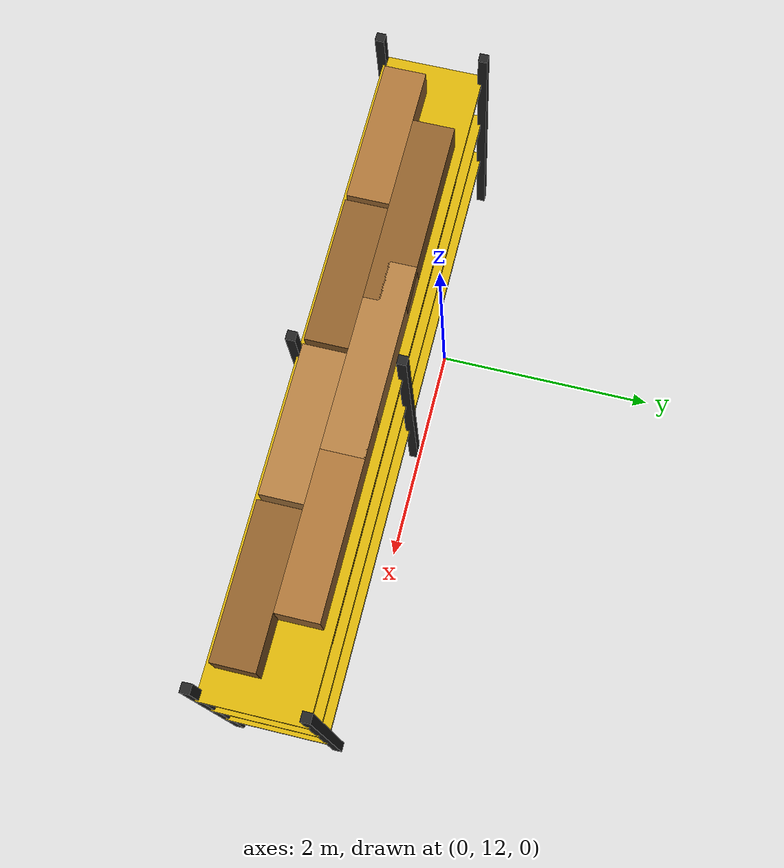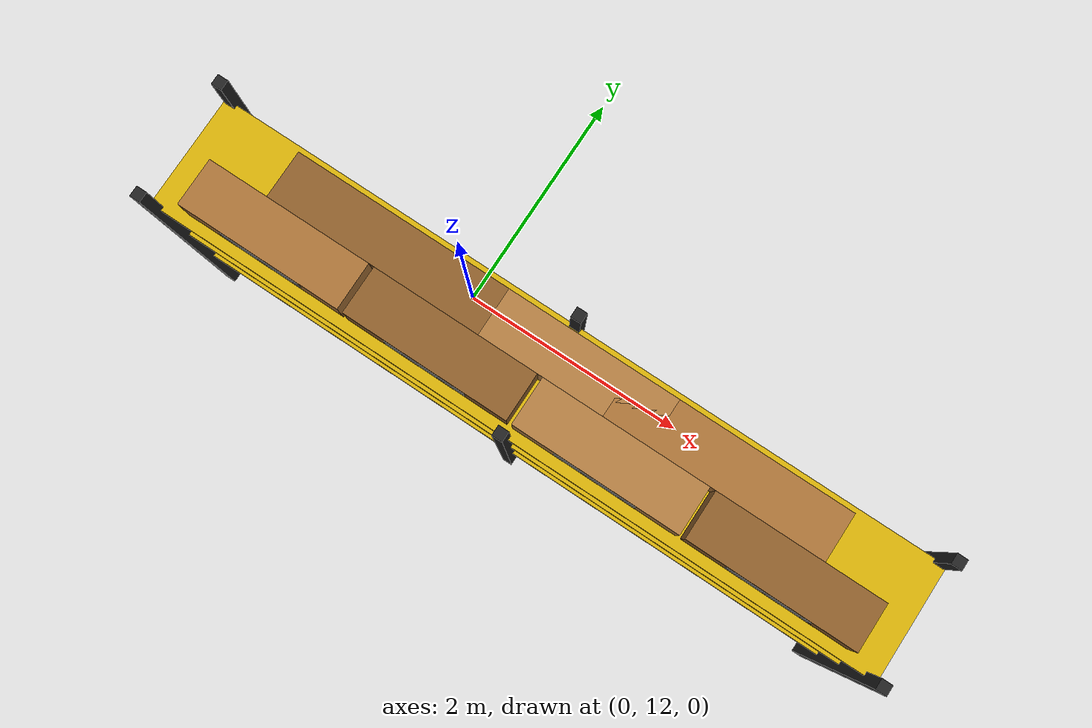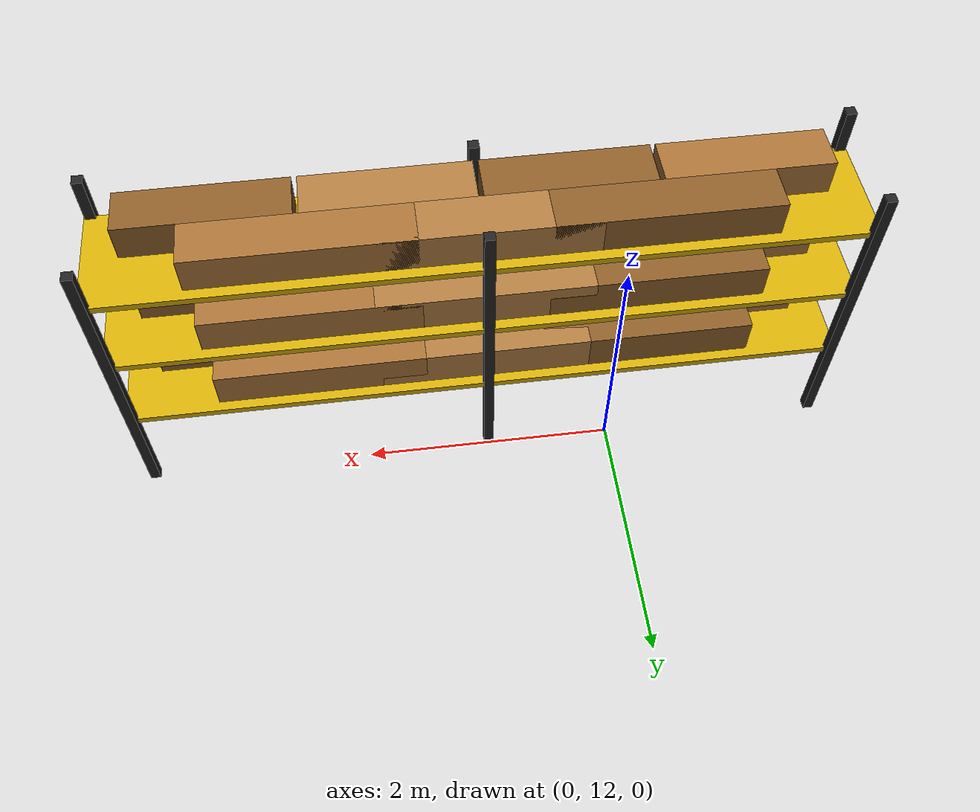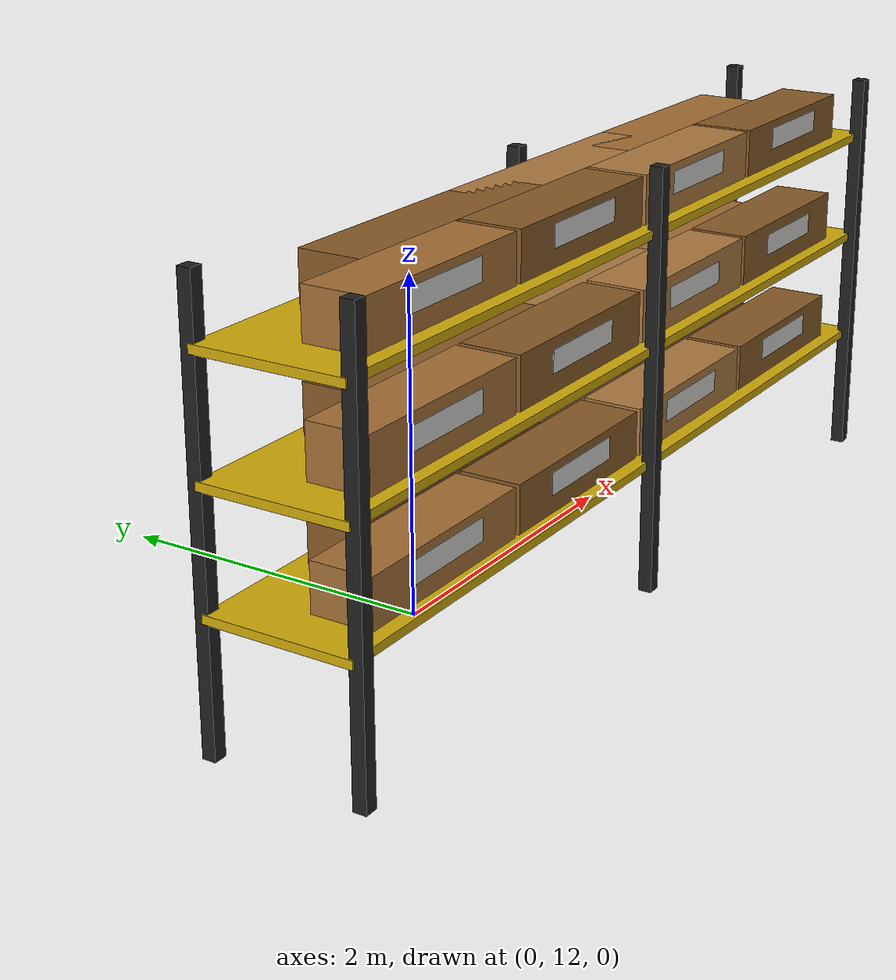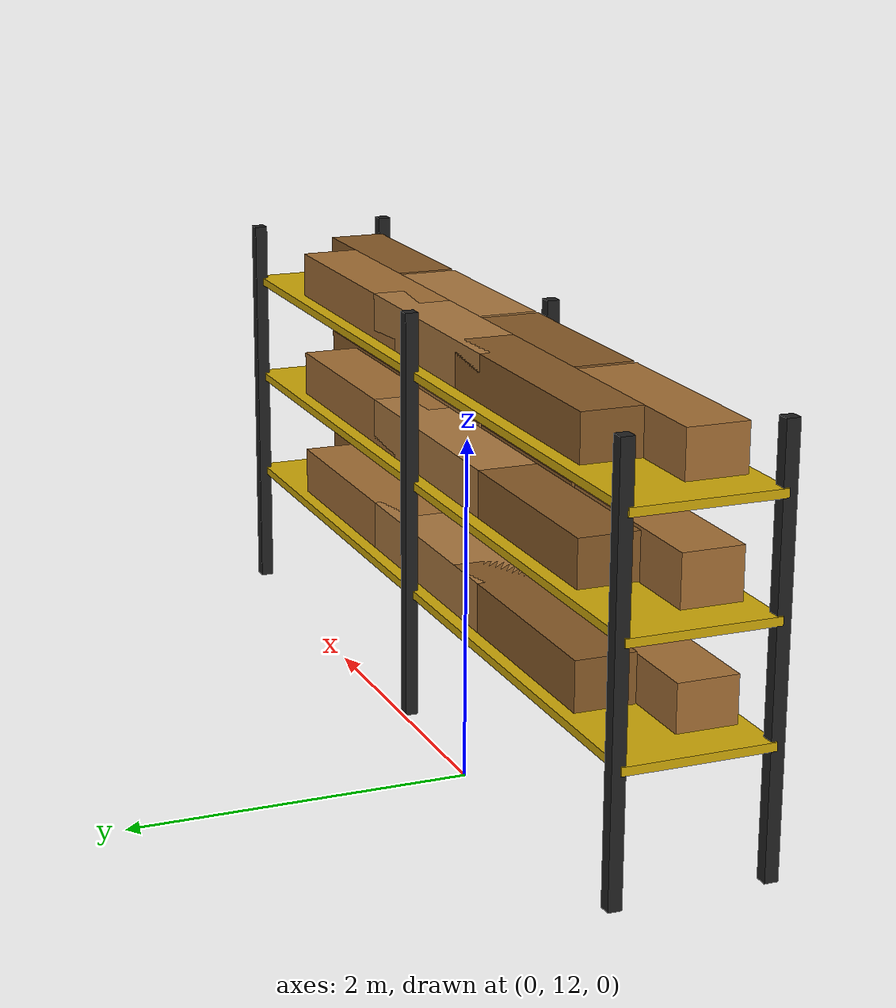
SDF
<sdf version="1.6">
 <world name="aws_industrial_warehouse">
  <model name="shelf_N4">
   <static>true</static>
   <pose>1 11.5 0 0 0 0</pose>
   <link name="pFL">
    <pose>-2.8 -0.45 1.25 0 0 0</pose>
    <collision name="c">
     <geometry><box><size>0.08 0.08 2.5</size></box></geometry>
     <surface><friction><ode><mu>1.0</mu><mu2>1.0</mu2></ode></friction></surface>
    </collision>
    <visual name="v">
     <geometry><box><size>0.08 0.08 2.5</size></box></geometry>
     <material><ambient>0.10 0.10 0.10 1</ambient><diffuse>0.13 0.13 0.13 1</diffuse></material>
    </visual>
   </link>
   <link name="pBL">
    <pose>-2.8 0.45 1.25 0 0 0</pose>
    <collision name="c">
     <geometry><box><size>0.08 0.08 2.5</size></box></geometry>
     <surface><friction><ode><mu>1.0</mu><mu2>1.0</mu2></ode></friction></surface>
    </collision>
    <visual name="v">
     <geometry><box><size>0.08 0.08 2.5</size></box></geometry>
     <material><ambient>0.10 0.10 0.10 1</ambient><diffuse>0.13 0.13 0.13 1</diffuse></material>
    </visual>
   </link>
   <link name="pFC">
    <pose>0.0 -0.45 1.25 0 0 0</pose>
    <collision name="c">
     <geometry><box><size>0.08 0.08 2.5</size></box></geometry>
     <surface><friction><ode><mu>1.0</mu><mu2>1.0</mu2></ode></friction></surface>
    </collision>
    <visual name="v">
     <geometry><box><size>0.08 0.08 2.5</size></box></geometry>
     <material><ambient>0.10 0.10 0.10 1</ambient><diffuse>0.13 0.13 0.13 1</diffuse></material>
    </visual>
   </link>
   <link name="pBC">
    <pose>0.0 0.45 1.25 0 0 0</pose>
    <collision name="c">
     <geometry><box><size>0.08 0.08 2.5</size></box></geometry>
     <surface><friction><ode><mu>1.0</mu><mu2>1.0</mu2></ode></friction></surface>
    </collision>
    <visual name="v">
     <geometry><box><size>0.08 0.08 2.5</size></box></geometry>
     <material><ambient>0.10 0.10 0.10 1</ambient><diffuse>0.13 0.13 0.13 1</diffuse></material>
    </visual>
   </link>
   <link name="pFR">
    <pose>2.8 -0.45 1.25 0 0 0</pose>
    <collision name="c">
     <geometry><box><size>0.08 0.08 2.5</size></box></geometry>
     <surface><friction><ode><mu>1.0</mu><mu2>1.0</mu2></ode></friction></surface>
    </collision>
    <visual name="v">
     <geometry><box><size>0.08 0.08 2.5</size></box></geometry>
     <material><ambient>0.10 0.10 0.10 1</ambient><diffuse>0.13 0.13 0.13 1</diffuse></material>
    </visual>
   </link>
   <link name="pBR">
    <pose>2.8 0.45 1.25 0 0 0</pose>
    <collision name="c">
     <geometry><box><size>0.08 0.08 2.5</size></box></geometry>
     <surface><friction><ode><mu>1.0</mu><mu2>1.0</mu2></ode></friction></surface>
    </collision>
    <visual name="v">
     <geometry><box><size>0.08 0.08 2.5</size></box></geometry>
     <material><ambient>0.10 0.10 0.10 1</ambient><diffuse>0.13 0.13 0.13 1</diffuse></material>
    </visual>
   </link>
   <link name="deck1">
    <pose>0 0 0.77 0 0 0</pose>
    <collision name="c">
     <geometry><box><size>5.7 0.88 0.05</size></box></geometry>
     <surface><friction><ode><mu>1.0</mu><mu2>1.0</mu2></ode></friction></surface>
    </collision>
    <visual name="v">
     <geometry><box><size>5.7 0.88 0.05</size></box></geometry>
     <material><ambient>0.70 0.55 0.02 1</ambient><diffuse>0.82 0.67 0.03 1</diffuse></material>
    </visual>
   </link>
   <link name="deck2">
    <pose>0 0 1.45 0 0 0</pose>
    <collision name="c">
     <geometry><box><size>5.7 0.88 0.05</size></box></geometry>
     <surface><friction><ode><mu>1.0</mu><mu2>1.0</mu2></ode></friction></surface>
    </collision>
    <visual name="v">
     <geometry><box><size>5.7 0.88 0.05</size></box></geometry>
     <material><ambient>0.70 0.55 0.02 1</ambient><diffuse>0.82 0.67 0.03 1</diffuse></material>
    </visual>
   </link>
   <link name="deck3">
    <pose>0 0 2.12 0 0 0</pose>
    <collision name="c">
     <geometry><box><size>5.7 0.88 0.05</size></box></geometry>
     <surface><friction><ode><mu>1.0</mu><mu2>1.0</mu2></ode></friction></surface>
    </collision>
    <visual name="v">
     <geometry><box><size>5.7 0.88 0.05</size></box></geometry>
     <material><ambient>0.70 0.55 0.02 1</ambient><diffuse>0.82 0.67 0.03 1</diffuse></material>
    </visual>
   </link>
   <link name="bF1_1">
    <pose>-1.95 -0.18 0.94 0 0 0</pose>
    <visual name="v">
     <geometry><box><size>1.26 0.36 0.28</size></box></geometry>
     <material><ambient>0.58 0.38 0.18 1</ambient><diffuse>0.65 0.44 0.21 1</diffuse></material>
    </visual>
   </link>
   <link name="lF1_1">
    <pose>-1.95 -0.363 0.97 0 0 0</pose>
    <visual name="v">
     <geometry><box><size>0.62 0.005 0.13</size></box></geometry>
     <material><ambient>0.76 0.76 0.74 1</ambient><diffuse>0.83 0.83 0.81 1</diffuse></material>
    </visual>
   </link>
   <link name="bF1_2">
    <pose>-0.65 -0.18 0.94 0 0 0</pose>
    <visual name="v">
     <geometry><box><size>1.26 0.36 0.28</size></box></geometry>
     <material><ambient>0.48 0.30 0.12 1</ambient><diffuse>0.54 0.36 0.16 1</diffuse></material>
    </visual>
   </link>
   <link name="lF1_2">
    <pose>-0.65 -0.363 0.97 0 0 0</pose>
    <visual name="v">
     <geometry><box><size>0.62 0.005 0.13</size></box></geometry>
     <material><ambient>0.76 0.76 0.74 1</ambient><diffuse>0.83 0.83 0.81 1</diffuse></material>
    </visual>
   </link>
   <link name="bF1_3">
    <pose>0.65 -0.18 0.94 0 0 0</pose>
    <visual name="v">
     <geometry><box><size>1.26 0.36 0.28</size></box></geometry>
     <material><ambient>0.62 0.43 0.22 1</ambient><diffuse>0.68 0.48 0.25 1</diffuse></material>
    </visual>
   </link>
   <link name="lF1_3">
    <pose>0.65 -0.363 0.97 0 0 0</pose>
    <visual name="v">
     <geometry><box><size>0.62 0.005 0.13</size></box></geometry>
     <material><ambient>0.76 0.76 0.74 1</ambient><diffuse>0.83 0.83 0.81 1</diffuse></material>
    </visual>
   </link>
   <link name="bF1_4">
    <pose>1.95 -0.18 0.94 0 0 0</pose>
    <visual name="v">
     <geometry><box><size>1.26 0.36 0.28</size></box></geometry>
     <material><ambient>0.48 0.30 0.12 1</ambient><diffuse>0.54 0.36 0.16 1</diffuse></material>
    </visual>
   </link>
   <link name="lF1_4">
    <pose>1.95 -0.363 0.97 0 0 0</pose>
    <visual name="v">
     <geometry><box><size>0.62 0.005 0.13</size></box></geometry>
     <material><ambient>0.76 0.76 0.74 1</ambient><diffuse>0.83 0.83 0.81 1</diffuse></material>
    </visual>
   </link>
   <link name="bB1_1">
    <pose>-1.3 0.18 0.94 0 0 0</pose>
    <visual name="v">
     <geometry><box><size>1.65 0.36 0.3</size></box></geometry>
     <material><ambient>0.48 0.30 0.12 1</ambient><diffuse>0.54 0.36 0.16 1</diffuse></material>
    </visual>
   </link>
   <link name="bB1_2">
    <pose>0.0 0.18 0.94 0 0 0</pose>
    <visual name="v">
     <geometry><box><size>1.65 0.36 0.3</size></box></geometry>
     <material><ambient>0.62 0.43 0.22 1</ambient><diffuse>0.68 0.48 0.25 1</diffuse></material>
    </visual>
   </link>
   <link name="bB1_3">
    <pose>1.3 0.18 0.94 0 0 0</pose>
    <visual name="v">
     <geometry><box><size>1.65 0.36 0.3</size></box></geometry>
     <material><ambient>0.58 0.38 0.18 1</ambient><diffuse>0.65 0.44 0.21 1</diffuse></material>
    </visual>
   </link>
   <link name="bF2_1">
    <pose>-1.95 -0.18 1.62 0 0 0</pose>
    <visual name="v">
     <geometry><box><size>1.26 0.36 0.32</size></box></geometry>
     <material><ambient>0.58 0.38 0.18 1</ambient><diffuse>0.65 0.44 0.21 1</diffuse></material>
    </visual>
   </link>
   <link name="lF2_1">
    <pose>-1.95 -0.363 1.6500000000000001 0 0 0</pose>
    <visual name="v">
     <geometry><box><size>0.62 0.005 0.13</size></box></geometry>
     <material><ambient>0.76 0.76 0.74 1</ambient><diffuse>0.83 0.83 0.81 1</diffuse></material>
    </visual>
   </link>
   <link name="bF2_2">
    <pose>-0.65 -0.18 1.62 0 0 0</pose>
    <visual name="v">
     <geometry><box><size>1.26 0.36 0.32</size></box></geometry>
     <material><ambient>0.48 0.30 0.12 1</ambient><diffuse>0.54 0.36 0.16 1</diffuse></material>
    </visual>
   </link>
   <link name="lF2_2">
    <pose>-0.65 -0.363 1.6500000000000001 0 0 0</pose>
    <visual name="v">
     <geometry><box><size>0.62 0.005 0.13</size></box></geometry>
     <material><ambient>0.76 0.76 0.74 1</ambient><diffuse>0.83 0.83 0.81 1</diffuse></material>
    </visual>
   </link>
   <link name="bF2_3">
    <pose>0.65 -0.18 1.62 0 0 0</pose>
    <visual name="v">
     <geometry><box><size>1.26 0.36 0.32</size></box></geometry>
     <material><ambient>0.62 0.43 0.22 1</ambient><diffuse>0.68 0.48 0.25 1</diffuse></material>
    </visual>
   </link>
   <link name="lF2_3">
    <pose>0.65 -0.363 1.6500000000000001 0 0 0</pose>
    <visual name="v">
     <geometry><box><size>0.62 0.005 0.13</size></box></geometry>
     <material><ambient>0.76 0.76 0.74 1</ambient><diffuse>0.83 0.83 0.81 1</diffuse></material>
    </visual>
   </link>
   <link name="bF2_4">
    <pose>1.95 -0.18 1.62 0 0 0</pose>
    <visual name="v">
     <geometry><box><size>1.26 0.36 0.32</size></box></geometry>
     <material><ambient>0.48 0.30 0.12 1</ambient><diffuse>0.54 0.36 0.16 1</diffuse></material>
    </visual>
   </link>
   <link name="lF2_4">
    <pose>1.95 -0.363 1.6500000000000001 0 0 0</pose>
    <visual name="v">
     <geometry><box><size>0.62 0.005 0.13</size></box></geometry>
     <material><ambient>0.76 0.76 0.74 1</ambient><diffuse>0.83 0.83 0.81 1</diffuse></material>
    </visual>
   </link>
   <link name="bB2_1">
    <pose>-1.3 0.18 1.62 0 0 0</pose>
    <visual name="v">
     <geometry><box><size>1.65 0.36 0.28</size></box></geometry>
     <material><ambient>0.48 0.30 0.12 1</ambient><diffuse>0.54 0.36 0.16 1</diffuse></material>
    </visual>
   </link>
   <link name="bB2_2">
    <pose>0.0 0.18 1.62 0 0 0</pose>
    <visual name="v">
     <geometry><box><size>1.65 0.36 0.28</size></box></geometry>
     <material><ambient>0.62 0.43 0.22 1</ambient><diffuse>0.68 0.48 0.25 1</diffuse></material>
    </visual>
   </link>
   <link name="bB2_3">
    <pose>1.3 0.18 1.62 0 0 0</pose>
    <visual name="v">
     <geometry><box><size>1.65 0.36 0.28</size></box></geometry>
     <material><ambient>0.58 0.38 0.18 1</ambient><diffuse>0.65 0.44 0.21 1</diffuse></material>
    </visual>
   </link>
   <link name="bF3_1">
    <pose>-1.95 -0.18 2.29 0 0 0</pose>
    <visual name="v">
     <geometry><box><size>1.26 0.36 0.28</size></box></geometry>
     <material><ambient>0.58 0.38 0.18 1</ambient><diffuse>0.65 0.44 0.21 1</diffuse></material>
    </visual>
   </link>
   <link name="lF3_1">
    <pose>-1.95 -0.363 2.32 0 0 0</pose>
    <visual name="v">
     <geometry><box><size>0.62 0.005 0.13</size></box></geometry>
     <material><ambient>0.76 0.76 0.74 1</ambient><diffuse>0.83 0.83 0.81 1</diffuse></material>
    </visual>
   </link>
   <link name="bF3_2">
    <pose>-0.65 -0.18 2.29 0 0 0</pose>
    <visual name="v">
     <geometry><box><size>1.26 0.36 0.28</size></box></geometry>
     <material><ambient>0.48 0.30 0.12 1</ambient><diffuse>0.54 0.36 0.16 1</diffuse></material>
    </visual>
   </link>
   <link name="lF3_2">
    <pose>-0.65 -0.363 2.32 0 0 0</pose>
    <visual name="v">
     <geometry><box><size>0.62 0.005 0.13</size></box></geometry>
     <material><ambient>0.76 0.76 0.74 1</ambient><diffuse>0.83 0.83 0.81 1</diffuse></material>
    </visual>
   </link>
   <link name="bF3_3">
    <pose>0.65 -0.18 2.29 0 0 0</pose>
    <visual name="v">
     <geometry><box><size>1.26 0.36 0.28</size></box></geometry>
     <material><ambient>0.62 0.43 0.22 1</ambient><diffuse>0.68 0.48 0.25 1</diffuse></material>
    </visual>
   </link>
   <link name="lF3_3">
    <pose>0.65 -0.363 2.32 0 0 0</pose>
    <visual name="v">
     <geometry><box><size>0.62 0.005 0.13</size></box></geometry>
     <material><ambient>0.76 0.76 0.74 1</ambient><diffuse>0.83 0.83 0.81 1</diffuse></material>
    </visual>
   </link>
   <link name="bF3_4">
    <pose>1.95 -0.18 2.29 0 0 0</pose>
    <visual name="v">
     <geometry><box><size>1.26 0.36 0.28</size></box></geometry>
     <material><ambient>0.48 0.30 0.12 1</ambient><diffuse>0.54 0.36 0.16 1</diffuse></material>
    </visual>
   </link>
   <link name="lF3_4">
    <pose>1.95 -0.363 2.32 0 0 0</pose>
    <visual name="v">
     <geometry><box><size>0.62 0.005 0.13</size></box></geometry>
     <material><ambient>0.76 0.76 0.74 1</ambient><diffuse>0.83 0.83 0.81 1</diffuse></material>
    </visual>
   </link>
   <link name="bB3_1">
    <pose>-1.3 0.18 2.29 0 0 0</pose>
    <visual name="v">
     <geometry><box><size>1.65 0.36 0.28</size></box></geometry>
     <material><ambient>0.48 0.30 0.12 1</ambient><diffuse>0.54 0.36 0.16 1</diffuse></material>
    </visual>
   </link>
   <link name="bB3_2">
    <pose>0.0 0.18 2.29 0 0 0</pose>
    <visual name="v">
     <geometry><box><size>1.65 0.36 0.28</size></box></geometry>
     <material><ambient>0.62 0.43 0.22 1</ambient><diffuse>0.68 0.48 0.25 1</diffuse></material>
    </visual>
   </link>
   <link name="bB3_3">
    <pose>1.3 0.18 2.29 0 0 0</pose>
    <visual name="v">
     <geometry><box><size>1.65 0.36 0.28</size></box></geometry>
     <material><ambient>0.58 0.38 0.18 1</ambient><diffuse>0.65 0.44 0.21 1</diffuse></material>
    </visual>
   </link>
  </model>
 </world>
</sdf>
